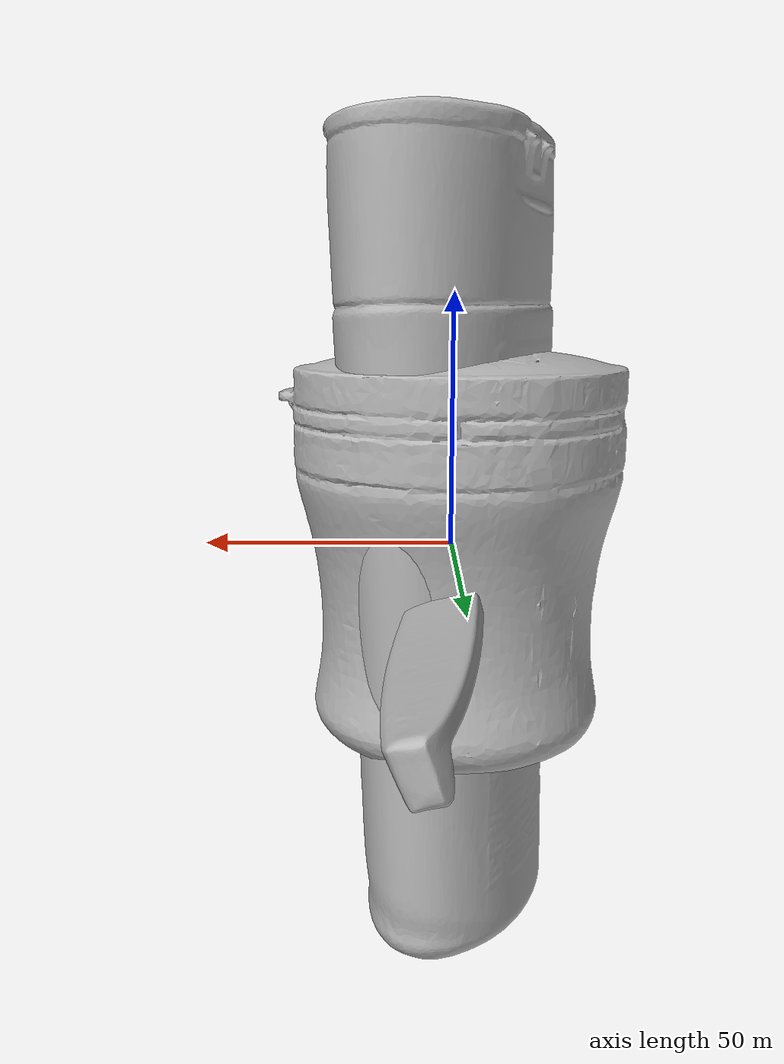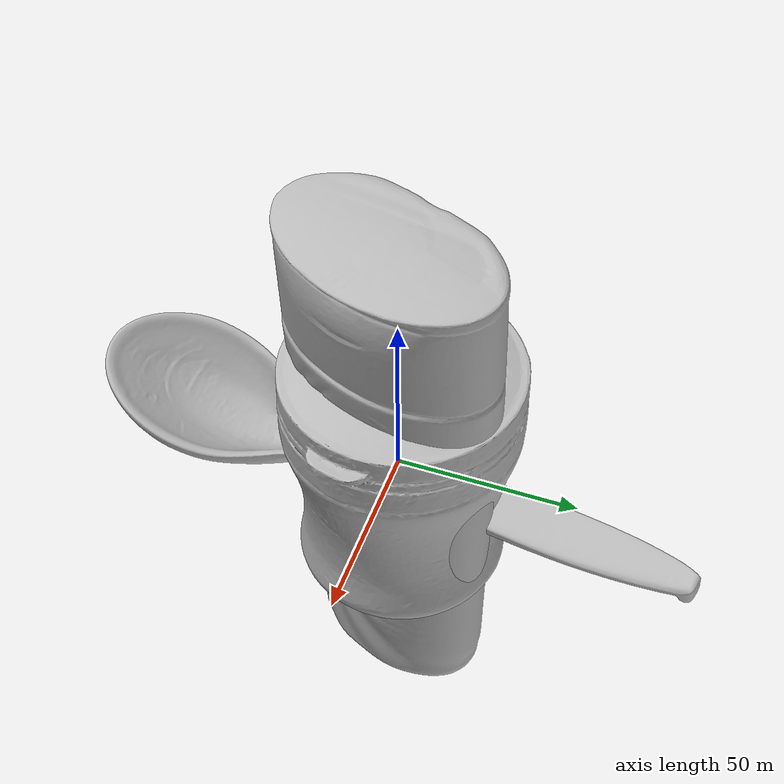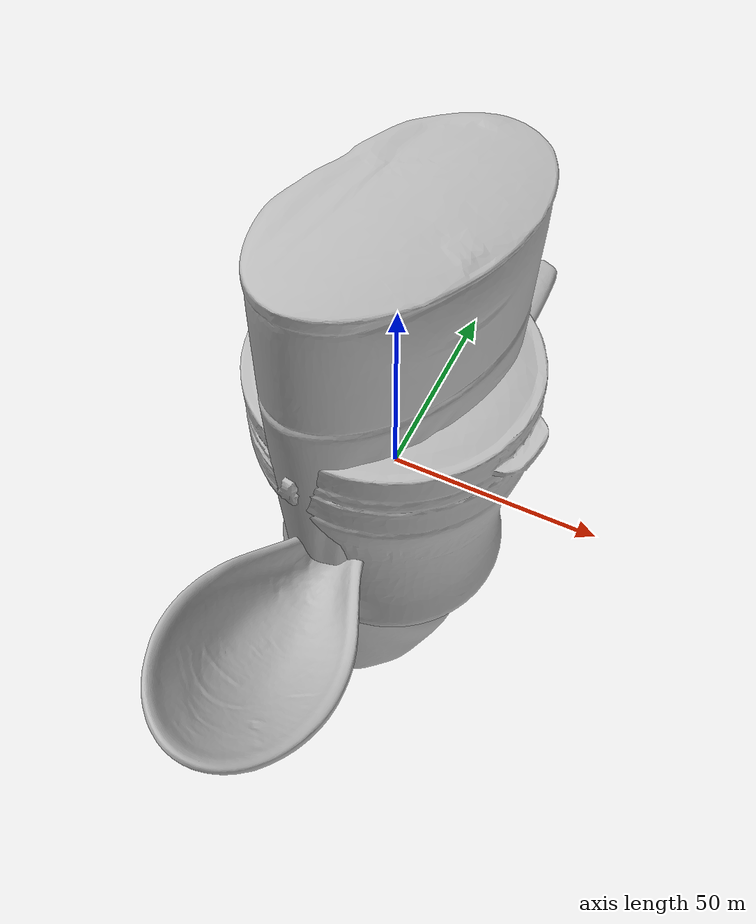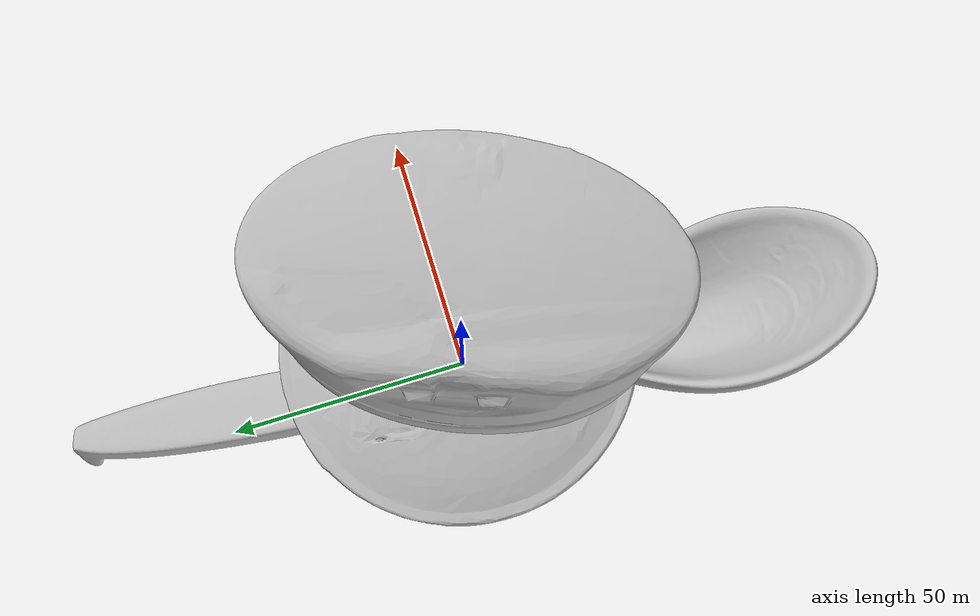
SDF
<sdf version="1.4">
 <world name="default">
  <light name="light1" type="point">
   <pose>0 0 1 0 0 0</pose>
   <diffuse>3 3 3 1</diffuse>
   <specular>3 3 3 1</specular>
  </light>
  <light name="light2" type="point">
   <pose>0 0.5 2 0 0 0</pose>
   <diffuse>1 1 1 1</diffuse>
   <specular>1 1 1 1</specular>
  </light>
  <light name="light3" type="point">
   <pose>0 0.5 2 0 0 0</pose>
   <diffuse>3 3 3 1</diffuse>
   <specular>3 3 3 1</specular>
  </light>
  <scene><ambient>0.7 0.7 0.7</ambient></scene>
  <model name="bottle1">
   <link name="link_bottle1">
    <collision name="default">
     <geometry>
      <mesh><uri>model://green_arrow/collision_meshes/collision.obj</uri><scale>1.0 1.0 1.0</scale></mesh>
     </geometry>
     <surface>
      <friction><ode><mu>0.5</mu><mu2>0.5</mu2></ode></friction>
      <contact><ode><max_vel>0</max_vel><min_depth>0.0001</min_depth><kp>1e8</kp></ode></contact>
     </surface>
    </collision>
    <visual name="default">
     <geometry>
      <mesh><uri>model://green_arrow/visual_meshes/visual.dae</uri><scale>1.0 1.0 1.0</scale></mesh>
     </geometry>
    </visual>
    <inertial>
     <mass>0.159866601228714</mass>
     <pose>0.0005358478520065546 -0.0008270691614598036 0.0022109695710241795 -0.0633227561078847 0.012984243694000861 0.6740794776591725</pose>
     <inertia>
      <ixx>0.00011596808</ixx>
      <iyy>0.00011579238</iyy>
      <izz>7.488036e-05</izz>
      <ixy>0</ixy>
      <ixz>0</ixz>
      <iyz>0</iyz>
     </inertia>
    </inertial>
   </link>
   <pose>0.04500123858451843 0.3681941330432892 0.03896167129278183 0.04528464969843111 0.024256569077238124 -2.4708042133028827</pose>
  </model>
  <model name="bottle2">
   <link name="link_bottle2">
    <collision name="default">
     <geometry>
      <mesh><uri>model://conditioner/collision_meshes/collision.obj</uri><scale>1.0 1.0 1.0</scale></mesh>
     </geometry>
     <surface>
      <friction><ode><mu>0.5</mu><mu2>0.5</mu2></ode></friction>
      <contact><ode><max_vel>0</max_vel><min_depth>0.0001</min_depth><kp>1e8</kp></ode></contact>
     </surface>
    </collision>
    <visual name="default">
     <geometry>
      <mesh><uri>model://conditioner/visual_meshes/visual.dae</uri><scale>1.0 1.0 1.0</scale></mesh>
     </geometry>
    </visual>
    <inertial>
     <mass>0.1887805312871933</mass>
     <pose>-0.00055994390277192 -0.00017297487647738308 0.004359682556241751 -0.005038374268360293 0.015306043554332214 0.015072361860715313</pose>
     <inertia>
      <ixx>0.00041066532</ixx>
      <iyy>0.00043991112</iyy>
      <izz>6.3318876e-05</izz>
      <ixy>0</ixy>
      <ixz>0</ixz>
      <iyz>0</iyz>
     </inertia>
    </inertial>
   </link>
   <pose>0.022321969270706177 -0.049417655915021896 0.08122973889112473 0.0368927903879087 -0.01566064783872792 1.1696275306972088</pose>
  </model>
  <model name="silverware1">
   <link name="link_silverware1">
    <collision name="default">
     <geometry>
      <mesh><uri>model://doraemon_spoon/collision_meshes/collision.obj</uri><scale>1.0 1.0 1.0</scale></mesh>
     </geometry>
     <surface>
      <friction><ode><mu>0.5</mu><mu2>0.5</mu2></ode></friction>
      <contact><ode><max_vel>0</max_vel><min_depth>0.0001</min_depth><kp>1e8</kp></ode></contact>
     </surface>
    </collision>
    <visual name="default">
     <geometry>
      <mesh><uri>model://doraemon_spoon/visual_meshes/visual.dae</uri><scale>1.0 1.0 1.0</scale></mesh>
     </geometry>
    </visual>
    <inertial>
     <mass>0.029215902090072632</mass>
     <pose>-0.022165078669786453 -0.0006374581134878099 -0.003332544816657901 -0.009147069561506448 0.07380416816022378 -0.014123831282405222</pose>
     <inertia>
      <ixx>2.2884674e-06</ixx>
      <iyy>6.499588e-05</iyy>
      <izz>6.610089e-05</izz>
      <ixy>0</ixy>
      <ixz>0</ixz>
      <iyz>0</iyz>
     </inertia>
    </inertial>
   </link>
   <pose>0.289322167634964 -0.23450401425361633 0.01473931409418583 0.2790098004026784 -0.010337346600242572 1.4728570669572825</pose>
  </model>
  <model name="stationery1">
   <link name="link_stationery1">
    <collision name="default">
     <geometry>
      <mesh><uri>model://correction_fuid/collision_meshes/collision.obj</uri><scale>1.0 1.0 1.0</scale></mesh>
     </geometry>
     <surface>
      <friction><ode><mu>0.5</mu><mu2>0.5</mu2></ode></friction>
      <contact><ode><max_vel>0</max_vel><min_depth>0.0001</min_depth><kp>1e8</kp></ode></contact>
     </surface>
    </collision>
    <visual name="default">
     <geometry>
      <mesh><uri>model://correction_fuid/visual_meshes/visual.dae</uri><scale>1.0 1.0 1.0</scale></mesh>
     </geometry>
    </visual>
    <inertial>
     <mass>0.02664039097726345</mass>
     <pose>-0.00012557733862195164 -0.0009722907561808825 -0.001618212671019137 -0.010846611490809042 0.019488348158978066 -0.015992455472155966</pose>
     <inertia>
      <ixx>2.5801672e-05</ixx>
      <iyy>1.5615498e-06</iyy>
      <izz>2.6473212e-05</izz>
      <ixy>0</ixy>
      <ixz>0</ixz>
      <iyz>0</iyz>
     </inertia>
    </inertial>
   </link>
   <pose>0.17728471755981445 -0.044428057968616486 0.009632833302021027 -0.0017271301357255479 -0.05616864572794933 1.9023174300231918</pose>
  </model>
  <model name="bowl1">
   <link name="link_bowl1">
    <collision name="default">
     <geometry>
      <mesh><uri>model://doraemon_bowl/collision_meshes/collision.obj</uri><scale>1.0 1.0 1.0</scale></mesh>
     </geometry>
     <surface>
      <friction><ode><mu>0.5</mu><mu2>0.5</mu2></ode></friction>
      <contact><ode><max_vel>0</max_vel><min_depth>0.0001</min_depth><kp>1e8</kp></ode></contact>
     </surface>
    </collision>
    <visual name="default">
     <geometry>
      <mesh><uri>model://doraemon_bowl/visual_meshes/visual.dae</uri><scale>1.0 1.0 1.0</scale></mesh>
     </geometry>
    </visual>
    <inertial>
     <mass>0.0632677748799324</mass>
     <pose>-0.014629557728767395 0.00048571318620815873 -0.0020864882972091436 -0.005093978566849342 -0.10568406006641042 -0.026426380562233804</pose>
     <inertia>
      <ixx>8.773087e-05</ixx>
      <iyy>0.00011545301</iyy>
      <izz>0.00016985848</izz>
      <ixy>0</ixy>
      <ixz>0</ixz>
      <iyz>0</iyz>
     </inertia>
    </inertial>
   </link>
   <pose>0.07812133431434631 -0.2900811433792114 0.025905489921569824 0.008593204589275106 0.006343628255679176 2.068728667955773</pose>
  </model>
  <model name="cup1">
   <link name="link_cup1">
    <collision name="default">
     <geometry>
      <mesh><uri>model://doraemon_cup/collision_meshes/collision.obj</uri><scale>1.0 1.0 1.0</scale></mesh>
     </geometry>
     <surface>
      <friction><ode><mu>0.5</mu><mu2>0.5</mu2></ode></friction>
      <contact><ode><max_vel>0</max_vel><min_depth>0.0001</min_depth><kp>1e8</kp></ode></contact>
     </surface>
    </collision>
    <visual name="default">
     <geometry>
      <mesh><uri>model://doraemon_cup/visual_meshes/visual.dae</uri><scale>1.0 1.0 1.0</scale></mesh>
     </geometry>
    </visual>
    <inertial>
     <mass>0.04278137534856796</mass>
     <pose>-0.0003292987239547074 -0.0016633577179163694 -0.0022522551007568836 0.19498548950287564 -0.013693938110122818 -0.3205458650037051</pose>
     <inertia>
      <ixx>5.8507427e-05</ixx>
      <iyy>5.6580026e-05</iyy>
      <izz>4.623892e-05</izz>
      <ixy>0</ixy>
      <ixz>0</ixz>
      <iyz>0</iyz>
     </inertia>
    </inertial>
   </link>
   <pose>-0.02998512051999569 -0.21258212625980377 0.04623185843229294 -0.01206531289634923 -0.008464689498466777 -1.6595618496480944</pose>
  </model>
  <model name="plate1">
   <link name="link_plate1">
    <collision name="default">
     <geometry>
      <mesh><uri>model://hello_kitty_plate/collision_meshes/collision.obj</uri><scale>1.0 1.0 1.0</scale></mesh>
     </geometry>
     <surface>
      <friction><ode><mu>0.5</mu><mu2>0.5</mu2></ode></friction>
      <contact><ode><max_vel>0</max_vel><min_depth>0.0001</min_depth><kp>1e8</kp></ode></contact>
     </surface>
    </collision>
    <visual name="default">
     <geometry>
      <mesh><uri>model://hello_kitty_plate/visual_meshes/visual.dae</uri><scale>1.0 1.0 1.0</scale></mesh>
     </geometry>
    </visual>
    <inertial>
     <mass>0.03555070236325264</mass>
     <pose>0.0073143006302416325 0.0002893744967877865 -0.0027947186026722193 -0.00010431820965322355 -0.007054446463638022 -0.014449070801334592</pose>
     <inertia>
      <ixx>6.855243e-05</ixx>
      <iyy>0.00012937908</iyy>
      <izz>0.0001964492</izz>
      <ixy>0</ixy>
      <ixz>0</ixz>
      <iyz>0</iyz>
     </inertia>
    </inertial>
   </link>
   <pose>0.19522805511951447 0.22771450877189636 0.008291446603834629 0.00046266941820311686 0.004170501255422115 -0.8564104731011776</pose>
  </model>
  <model name="box4">
   <link name="link_box4">
    <collision name="default">
     <geometry>
      <mesh><uri>model://wooden_puzzle1/collision_meshes/collision.obj</uri><scale>1.0 1.0 1.0</scale></mesh>
     </geometry>
     <surface>
      <friction><ode><mu>0.5</mu><mu2>0.5</mu2></ode></friction>
      <contact><ode><max_vel>0</max_vel><min_depth>0.0001</min_depth><kp>1e8</kp></ode></contact>
     </surface>
    </collision>
    <visual name="default">
     <geometry>
      <mesh><uri>model://wooden_puzzle1/visual_meshes/visual.dae</uri><scale>1.0 1.0 1.0</scale></mesh>
     </geometry>
    </visual>
    <inertial>
     <mass>0.03278602659702301</mass>
     <pose>-0.00017350679263472557 7.972260937094688e-05 -9.191554272547364e-05 -0.07784358361794479 -0.263610796923839 -0.5528741327723476</pose>
     <inertia>
      <ixx>6.1858273e-06</ixx>
      <iyy>6.0667485e-06</iyy>
      <izz>6.139123e-06</izz>
      <ixy>0</ixy>
      <ixz>0</ixz>
      <iyz>0</iyz>
     </inertia>
    </inertial>
   </link>
   <pose>0.14412063360214233 -0.21724645793437958 0.016801947727799416 0.010516729268310846 -0.009457943363978826 0.9848206838135946</pose>
  </model>
  <physics type="ode">
   <max_contacts>50</max_contacts>
   <ode>
    <solver><type>quick</type><iters>75</iters></solver>
    <constraints>
     <contact_max_correcting_vel>0</contact_max_correcting_vel>
     <contact_surface_layer>0</contact_surface_layer>
    </constraints>
   </ode>
  </physics>
 </world>
</sdf>
